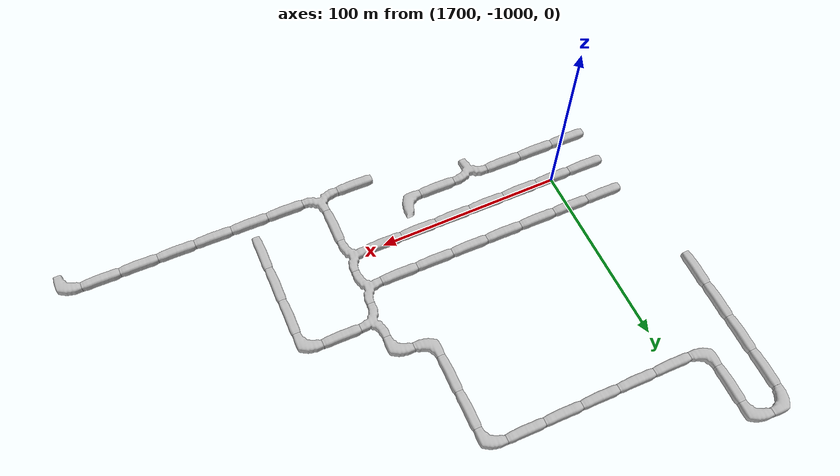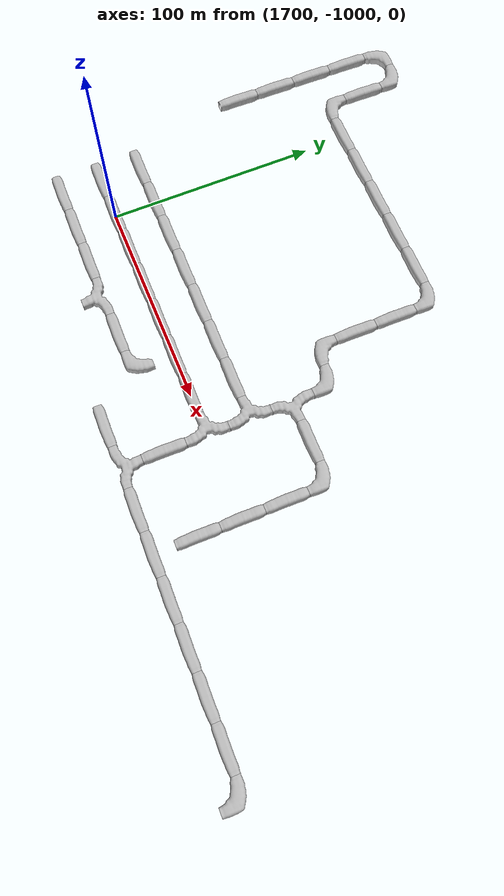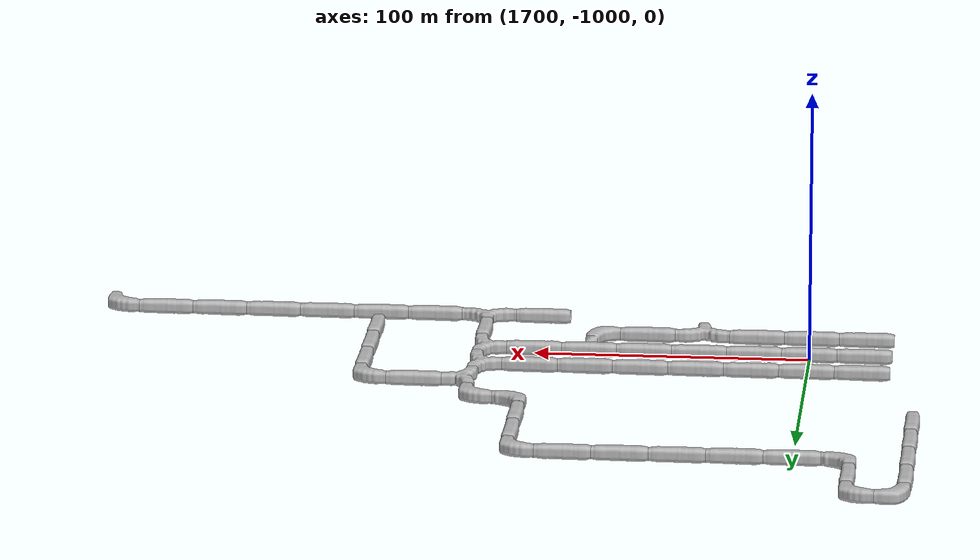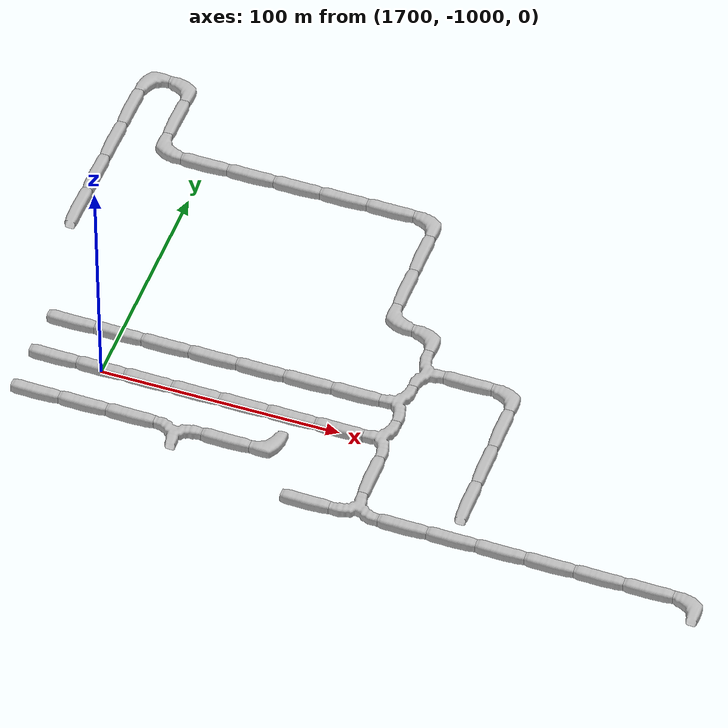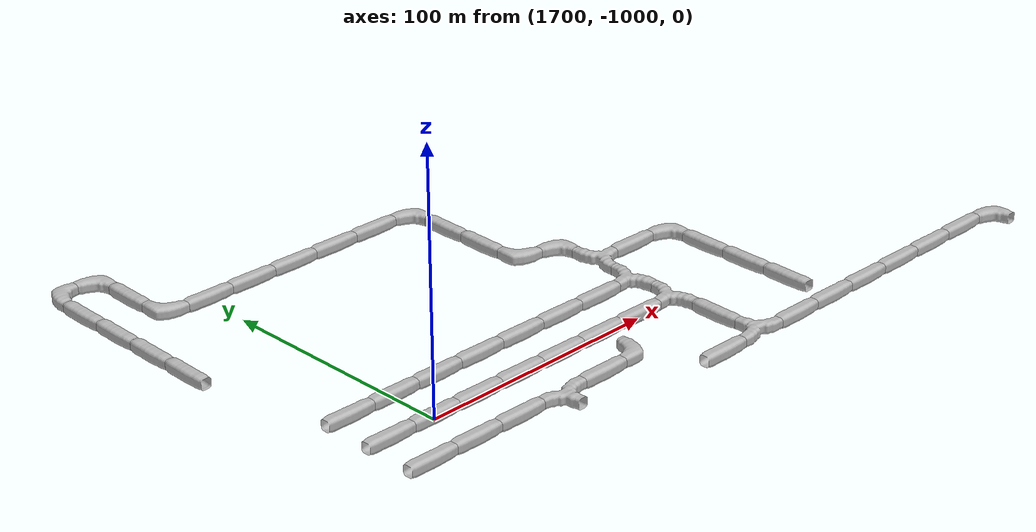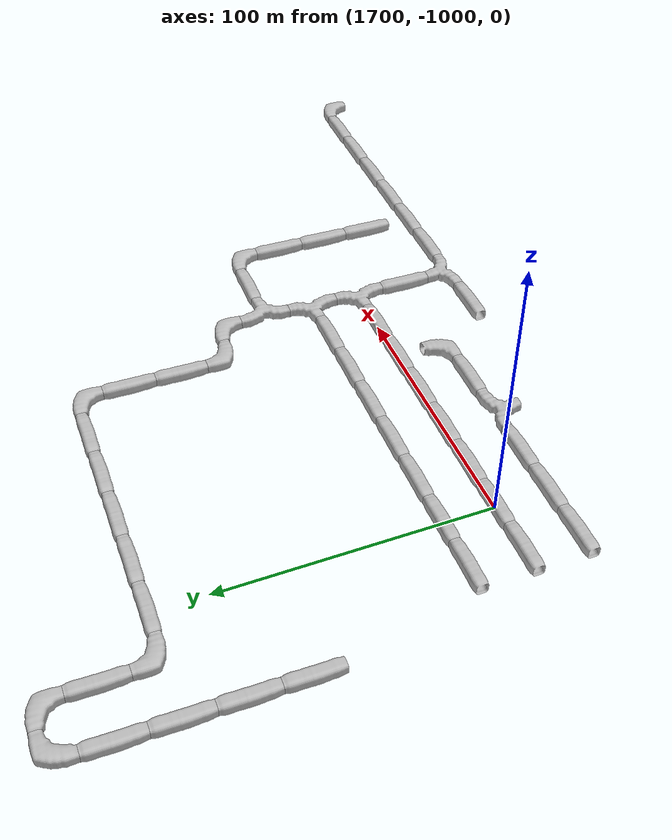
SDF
<sdf version="1.6">
 <world name="cave_32000_2">
  <include>
   <static>true</static>
   <name>cave_84_-50</name>
   <pose>1680 -1000 0 0 0 1.5707963267948966</pose>
   <uri>model://cave_straight_20m</uri>
  </include>
  <include>
   <static>true</static>
   <name>cave_85_-50</name>
   <pose>1700 -1000 0 0 0 1.5707963267948966</pose>
   <uri>model://cave_straight_20m</uri>
  </include>
  <include>
   <static>true</static>
   <name>cave_86_-50</name>
   <pose>1720 -1000 0 0 0 1.5707963267948966</pose>
   <uri>model://cave_straight_20m</uri>
  </include>
  <include>
   <static>true</static>
   <name>cave_87_-50</name>
   <pose>1740 -1000 0 0 0 1.5707963267948966</pose>
   <uri>model://cave_straight_20m</uri>
  </include>
  <include>
   <static>true</static>
   <name>cave_88_-50</name>
   <pose>1760 -1000 0 0 0 1.5707963267948966</pose>
   <uri>model://cave_straight_20m</uri>
  </include>
  <include>
   <static>true</static>
   <name>cave_89_-50</name>
   <pose>1780 -1000 0 0 0 1.5707963267948966</pose>
   <uri>model://cave_straight_20m</uri>
  </include>
  <include>
   <static>true</static>
   <name>cave_90_-50</name>
   <pose>1800 -1000 0 0 0 1.5707963267948966</pose>
   <uri>model://cave_straight_20m</uri>
  </include>
  <include>
   <static>true</static>
   <name>cave_91_-50</name>
   <pose>1820 -1000 0 0 0 1.5707963267948966</pose>
   <uri>model://cave_3way_20m</uri>
  </include>
  <include>
   <static>true</static>
   <name>cave_91_-51</name>
   <pose>1820 -1020 0 0 0 0.0</pose>
   <uri>model://cave_straight_20m</uri>
  </include>
  <include>
   <static>true</static>
   <name>cave_91_-52</name>
   <pose>1820 -1040 0 0 0 0.0</pose>
   <uri>model://cave_3way_20m</uri>
  </include>
  <include>
   <static>true</static>
   <name>cave_92_-52</name>
   <pose>1840 -1040 0 0 0 1.5707963267948966</pose>
   <uri>model://cave_straight_20m</uri>
  </include>
  <include>
   <static>true</static>
   <name>cave_93_-52</name>
   <pose>1860 -1040 0 0 0 1.5707963267948966</pose>
   <uri>model://cave_straight_20m</uri>
  </include>
  <include>
   <static>true</static>
   <name>cave_94_-52</name>
   <pose>1880 -1040 0 0 0 1.5707963267948966</pose>
   <uri>model://cave_straight_20m</uri>
  </include>
  <include>
   <static>true</static>
   <name>cave_95_-52</name>
   <pose>1900 -1040 0 0 0 1.5707963267948966</pose>
   <uri>model://cave_straight_20m</uri>
  </include>
  <include>
   <static>true</static>
   <name>cave_96_-52</name>
   <pose>1920 -1040 0 0 0 1.5707963267948966</pose>
   <uri>model://cave_straight_20m</uri>
  </include>
  <include>
   <static>true</static>
   <name>cave_97_-52</name>
   <pose>1940 -1040 0 0 0 1.5707963267948966</pose>
   <uri>model://cave_straight_20m</uri>
  </include>
  <include>
   <static>true</static>
   <name>cave_98_-52</name>
   <pose>1960 -1040 0 0 0 3.141592653589793</pose>
   <uri>model://cave_L_20m</uri>
  </include>
  <include>
   <static>true</static>
   <name>cave_91_-49</name>
   <pose>1820 -980 0 0 0 1.5707963267948966</pose>
   <uri>model://cave_3way_20m</uri>
  </include>
  <include>
   <static>true</static>
   <name>cave_90_-49</name>
   <pose>1800 -980 0 0 0 1.5707963267948966</pose>
   <uri>model://cave_straight_20m</uri>
  </include>
  <include>
   <static>true</static>
   <name>cave_89_-49</name>
   <pose>1780 -980 0 0 0 1.5707963267948966</pose>
   <uri>model://cave_straight_20m</uri>
  </include>
  <include>
   <static>true</static>
   <name>cave_88_-49</name>
   <pose>1760 -980 0 0 0 1.5707963267948966</pose>
   <uri>model://cave_straight_20m</uri>
  </include>
  <include>
   <static>true</static>
   <name>cave_87_-49</name>
   <pose>1740 -980 0 0 0 1.5707963267948966</pose>
   <uri>model://cave_straight_20m</uri>
  </include>
  <include>
   <static>true</static>
   <name>cave_86_-49</name>
   <pose>1720 -980 0 0 0 1.5707963267948966</pose>
   <uri>model://cave_straight_20m</uri>
  </include>
  <include>
   <static>true</static>
   <name>cave_85_-49</name>
   <pose>1700 -980 0 0 0 1.5707963267948966</pose>
   <uri>model://cave_straight_20m</uri>
  </include>
  <include>
   <static>true</static>
   <name>cave_84_-49</name>
   <pose>1680 -980 0 0 0 1.5707963267948966</pose>
   <uri>model://cave_straight_20m</uri>
  </include>
  <include>
   <static>true</static>
   <name>cave_91_-48</name>
   <pose>1820 -960 0 0 0 -1.5707963267948966</pose>
   <uri>model://cave_3way_20m</uri>
  </include>
  <include>
   <static>true</static>
   <name>cave_92_-48</name>
   <pose>1840 -960 0 0 0 1.5707963267948966</pose>
   <uri>model://cave_straight_20m</uri>
  </include>
  <include>
   <static>true</static>
   <name>cave_93_-48</name>
   <pose>1860 -960 0 0 0 3.141592653589793</pose>
   <uri>model://cave_L_20m</uri>
  </include>
  <include>
   <static>true</static>
   <name>cave_93_-49</name>
   <pose>1860 -980 0 0 0 0.0</pose>
   <uri>model://cave_straight_20m</uri>
  </include>
  <include>
   <static>true</static>
   <name>cave_93_-50</name>
   <pose>1860 -1000 0 0 0 0.0</pose>
   <uri>model://cave_straight_20m</uri>
  </include>
  <include>
   <static>true</static>
   <name>cave_93_-51</name>
   <pose>1860 -1020 0 0 0 0.0</pose>
   <uri>model://cave_straight_20m</uri>
  </include>
  <include>
   <static>true</static>
   <name>cave_91_-47</name>
   <pose>1820 -940 0 0 0 3.141592653589793</pose>
   <uri>model://cave_L_20m</uri>
  </include>
  <include>
   <static>true</static>
   <name>cave_90_-47</name>
   <pose>1800 -940 0 0 0 0.0</pose>
   <uri>model://cave_L_20m</uri>
  </include>
  <include>
   <static>true</static>
   <name>cave_90_-46</name>
   <pose>1800 -920 0 0 0 0.0</pose>
   <uri>model://cave_straight_20m</uri>
  </include>
  <include>
   <static>true</static>
   <name>cave_90_-45</name>
   <pose>1800 -900 0 0 0 0.0</pose>
   <uri>model://cave_straight_20m</uri>
  </include>
  <include>
   <static>true</static>
   <name>cave_90_-44</name>
   <pose>1800 -880 0 0 0 3.141592653589793</pose>
   <uri>model://cave_L_20m</uri>
  </include>
  <include>
   <static>true</static>
   <name>cave_89_-44</name>
   <pose>1780 -880 0 0 0 1.5707963267948966</pose>
   <uri>model://cave_straight_20m</uri>
  </include>
  <include>
   <static>true</static>
   <name>cave_83_-46</name>
   <pose>1660 -920 0 0 0 0.0</pose>
   <uri>model://cave_straight_20m</uri>
  </include>
  <include>
   <static>true</static>
   <name>cave_83_-45</name>
   <pose>1660 -900 0 0 0 0.0</pose>
   <uri>model://cave_straight_20m</uri>
  </include>
  <include>
   <static>true</static>
   <name>cave_83_-44</name>
   <pose>1660 -880 0 0 0 0.0</pose>
   <uri>model://cave_straight_20m</uri>
  </include>
  <include>
   <static>true</static>
   <name>cave_83_-43</name>
   <pose>1660 -860 0 0 0 0.0</pose>
   <uri>model://cave_straight_20m</uri>
  </include>
  <include>
   <static>true</static>
   <name>cave_83_-42</name>
   <pose>1660 -840 0 0 0 -1.5707963267948966</pose>
   <uri>model://cave_L_20m</uri>
  </include>
  <include>
   <static>true</static>
   <name>cave_84_-42</name>
   <pose>1680 -840 0 0 0 3.141592653589793</pose>
   <uri>model://cave_L_20m</uri>
  </include>
  <include>
   <static>true</static>
   <name>cave_84_-43</name>
   <pose>1680 -860 0 0 0 0.0</pose>
   <uri>model://cave_straight_20m</uri>
  </include>
  <include>
   <static>true</static>
   <name>cave_84_-44</name>
   <pose>1680 -880 0 0 0 0.0</pose>
   <uri>model://cave_L_20m</uri>
  </include>
  <include>
   <static>true</static>
   <name>cave_85_-44</name>
   <pose>1700 -880 0 0 0 1.5707963267948966</pose>
   <uri>model://cave_straight_20m</uri>
  </include>
  <include>
   <static>true</static>
   <name>cave_86_-44</name>
   <pose>1720 -880 0 0 0 1.5707963267948966</pose>
   <uri>model://cave_straight_20m</uri>
  </include>
  <include>
   <static>true</static>
   <name>cave_87_-44</name>
   <pose>1740 -880 0 0 0 1.5707963267948966</pose>
   <uri>model://cave_straight_20m</uri>
  </include>
  <include>
   <static>true</static>
   <name>cave_88_-44</name>
   <pose>1760 -880 0 0 0 1.5707963267948966</pose>
   <uri>model://cave_straight_20m</uri>
  </include>
  <include>
   <static>true</static>
   <name>cave_84_-51</name>
   <pose>1680 -1020 0 0 0 1.5707963267948966</pose>
   <uri>model://cave_straight_20m</uri>
  </include>
  <include>
   <static>true</static>
   <name>cave_85_-51</name>
   <pose>1700 -1020 0 0 0 1.5707963267948966</pose>
   <uri>model://cave_straight_20m</uri>
  </include>
  <include>
   <static>true</static>
   <name>cave_86_-51</name>
   <pose>1720 -1020 0 0 0 1.5707963267948966</pose>
   <uri>model://cave_straight_20m</uri>
  </include>
  <include>
   <static>true</static>
   <name>cave_87_-51</name>
   <pose>1740 -1020 0 0 0 3.141592653589793</pose>
   <uri>model://cave_3way_20m</uri>
  </include>
  <include>
   <static>true</static>
   <name>cave_88_-51</name>
   <pose>1760 -1020 0 0 0 1.5707963267948966</pose>
   <uri>model://cave_straight_20m</uri>
  </include>
  <include>
   <static>true</static>
   <name>cave_89_-51</name>
   <pose>1780 -1020 0 0 0 1.5707963267948966</pose>
   <uri>model://cave_L_20m</uri>
  </include>
  <include>
   <static>true</static>
   <name>cave_90_-52</name>
   <pose>1800 -1040 0 0 0 1.5707963267948966</pose>
   <uri>model://cave_straight_20m</uri>
  </include>
 </world>
</sdf>
